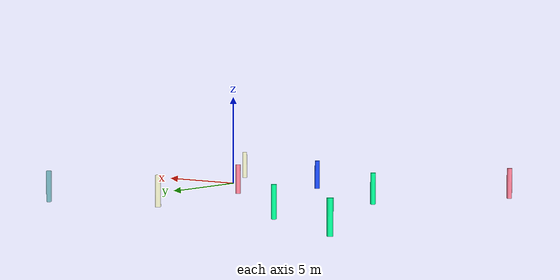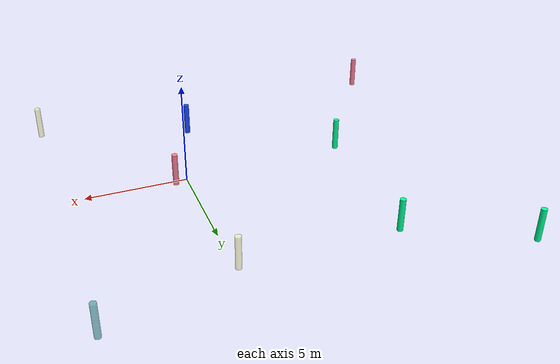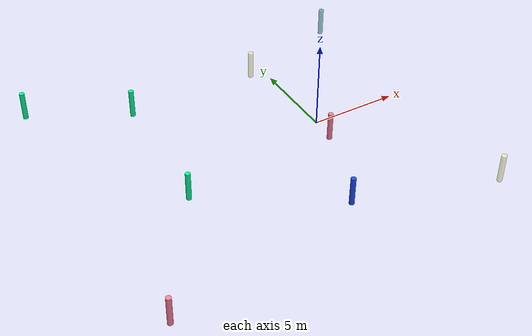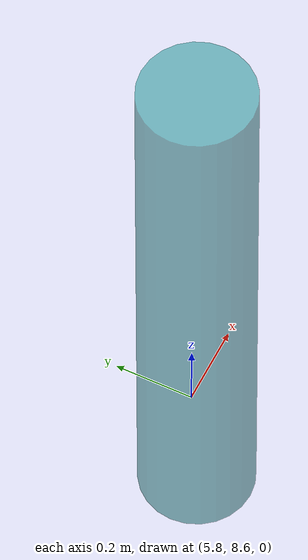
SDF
<?xml version='1.0'?>
<sdf version='1.6'>
  <model name='column'>
    <link name='link'>
      <pose frame=''>0.349547 -0.833341 0.176042 0 -0 0</pose>
      <inertial>
        <mass>0.145554</mass>
        <inertia>
          <ixx>0.0358698</ixx>
          <ixy>0</ixy>
          <ixz>0</ixz>
          <iyy>0.0358698</iyy>
          <iyz>0</iyz>
          <izz>0.00155704</izz>
        </inertia>
        <pose frame=''>0 0 0 0 -0 0</pose>
      </inertial>
      <self_collide>0</self_collide>
      <kinematic>0</kinematic>
      <gravity>1</gravity>
      <visual name='visual'>
        <geometry>
          <cylinder>
            <radius>0.146269</radius>
            <length>1.7009</length>
          </cylinder>
        </geometry>
        <material>
          <script>
            <name>Gazebo/Grey</name>
            <uri>file://media/materials/scripts/gazebo.material</uri>
          </script>
          <shader type='pixel'>
            <normal_map>__default__</normal_map>
          </shader>
          <ambient>1 0.5 0.6 1</ambient>
          <diffuse>0.7 0.7 0.7 1</diffuse>
          <specular>0.01 0.01 0.01 1</specular>
          <emissive>0 0 0 1</emissive>
        </material>
        <pose frame=''>0 0 0 0 -0 0</pose>
        <transparency>0</transparency>
        <cast_shadows>1</cast_shadows>
      </visual>
      <collision name='collision'>
        <laser_retro>0</laser_retro>
        <max_contacts>10</max_contacts>
        <pose frame=''>0 0 0 0 -0 0</pose>
        <geometry>
          <cylinder>
            <radius>0.146269</radius>
            <length>1.7009</length>
          </cylinder>
        </geometry>
        <surface>
          <friction>
            <ode>
              <mu>1</mu>
              <mu2>1</mu2>
              <fdir1>0 0 0</fdir1>
              <slip1>0</slip1>
              <slip2>0</slip2>
            </ode>
            <torsional>
              <coefficient>1</coefficient>
              <patch_radius>0</patch_radius>
              <surface_radius>0</surface_radius>
              <use_patch_radius>1</use_patch_radius>
              <ode>
                <slip>0</slip>
              </ode>
            </torsional>
          </friction>
          <bounce>
            <restitution_coefficient>0</restitution_coefficient>
            <threshold>1e+06</threshold>
          </bounce>
          <contact>
            <collide_without_contact>0</collide_without_contact>
            <collide_without_contact_bitmask>1</collide_without_contact_bitmask>
            <collide_bitmask>1</collide_bitmask>
            <ode>
              <soft_cfm>0</soft_cfm>
              <soft_erp>0.2</soft_erp>
              <kp>1e+13</kp>
              <kd>1</kd>
              <max_vel>0.01</max_vel>
              <min_depth>0</min_depth>
            </ode>
            <bullet>
              <split_impulse>1</split_impulse>
              <split_impulse_penetration_threshold>-0.01</split_impulse_penetration_threshold>
              <soft_cfm>0</soft_cfm>
              <soft_erp>0.2</soft_erp>
              <kp>1e+13</kp>
              <kd>1</kd>
            </bullet>
          </contact>
        </surface>
      </collision>
    </link>
    <link name='link_clone'>
      <pose frame=''>-8.75389 -1.38512 0.176042 0 -0 0</pose>
      <inertial>
        <mass>0.145554</mass>
        <inertia>
          <ixx>0.0358698</ixx>
          <ixy>0</ixy>
          <ixz>0</ixz>
          <iyy>0.0358698</iyy>
          <iyz>0</iyz>
          <izz>0.00155704</izz>
        </inertia>
        <pose frame=''>0 0 0 0 -0 0</pose>
      </inertial>
      <self_collide>0</self_collide>
      <kinematic>0</kinematic>
      <gravity>1</gravity>
      <visual name='visual'>
        <geometry>
          <cylinder>
            <radius>0.146269</radius>
            <length>1.7009</length>
          </cylinder>
        </geometry>
        <material>
          <script>
            <name>Gazebo/Grey</name>
            <uri>file://media/materials/scripts/gazebo.material</uri>
          </script>
          <shader type='pixel'>
            <normal_map>__default__</normal_map>
          </shader>
          <ambient>0 1 0.6 1</ambient>
          <diffuse>0.7 0.7 0.7 1</diffuse>
          <specular>0.01 0.01 0.01 1</specular>
          <emissive>0 0 0 1</emissive>
        </material>
        <pose frame=''>0 0 0 0 -0 0</pose>
        <transparency>0</transparency>
        <cast_shadows>1</cast_shadows>
      </visual>
      <collision name='collision'>
        <laser_retro>0</laser_retro>
        <max_contacts>10</max_contacts>
        <pose frame=''>0 0 0 0 -0 0</pose>
        <geometry>
          <cylinder>
            <radius>0.146269</radius>
            <length>1.7009</length>
          </cylinder>
        </geometry>
        <surface>
          <friction>
            <ode>
              <mu>1</mu>
              <mu2>1</mu2>
              <fdir1>0 0 0</fdir1>
              <slip1>0</slip1>
              <slip2>0</slip2>
            </ode>
            <torsional>
              <coefficient>1</coefficient>
              <patch_radius>0</patch_radius>
              <surface_radius>0</surface_radius>
              <use_patch_radius>1</use_patch_radius>
              <ode>
                <slip>0</slip>
              </ode>
            </torsional>
          </friction>
          <bounce>
            <restitution_coefficient>0</restitution_coefficient>
            <threshold>1e+06</threshold>
          </bounce>
          <contact>
            <collide_without_contact>0</collide_without_contact>
            <collide_without_contact_bitmask>1</collide_without_contact_bitmask>
            <collide_bitmask>1</collide_bitmask>
            <ode>
              <soft_cfm>0</soft_cfm>
              <soft_erp>0.2</soft_erp>
              <kp>1e+13</kp>
              <kd>1</kd>
              <max_vel>0.01</max_vel>
              <min_depth>0</min_depth>
            </ode>
            <bullet>
              <split_impulse>1</split_impulse>
              <split_impulse_penetration_threshold>-0.01</split_impulse_penetration_threshold>
              <soft_cfm>0</soft_cfm>
              <soft_erp>0.2</soft_erp>
              <kp>1e+13</kp>
              <kd>1</kd>
            </bullet>
          </contact>
        </surface>
      </collision>
    </link>
    <link name='link_clone_0'>
      <pose frame=''>-13.3207 -8.44434 0.176042 0 -0 0</pose>
      <inertial>
        <mass>0.145554</mass>
        <inertia>
          <ixx>0.0358698</ixx>
          <ixy>0</ixy>
          <ixz>0</ixz>
          <iyy>0.0358698</iyy>
          <iyz>0</iyz>
          <izz>0.00155704</izz>
        </inertia>
        <pose frame=''>0 0 0 0 -0 0</pose>
      </inertial>
      <self_collide>0</self_collide>
      <kinematic>0</kinematic>
      <visual name='visual'>
        <geometry>
          <cylinder>
            <radius>0.146269</radius>
            <length>1.7009</length>
          </cylinder>
        </geometry>
        <material>
          <script>
            <name>Gazebo/Grey</name>
            <uri>file://media/materials/scripts/gazebo.material</uri>
          </script>
          <shader type='pixel'>
            <normal_map>__default__</normal_map>
          </shader>
          <ambient>1 0.5 0.6 1</ambient>
          <diffuse>0.7 0.7 0.7 1</diffuse>
          <specular>0.01 0.01 0.01 1</specular>
          <emissive>0 0 0 1</emissive>
        </material>
        <pose frame=''>0 0 0 0 -0 0</pose>
        <transparency>0</transparency>
        <cast_shadows>1</cast_shadows>
      </visual>
      <collision name='collision'>
        <laser_retro>0</laser_retro>
        <max_contacts>10</max_contacts>
        <pose frame=''>0 0 0 0 -0 0</pose>
        <geometry>
          <cylinder>
            <radius>0.146269</radius>
            <length>1.7009</length>
          </cylinder>
        </geometry>
        <surface>
          <friction>
            <ode>
              <mu>1</mu>
              <mu2>1</mu2>
              <fdir1>0 0 0</fdir1>
              <slip1>0</slip1>
              <slip2>0</slip2>
            </ode>
            <torsional>
              <coefficient>1</coefficient>
              <patch_radius>0</patch_radius>
              <surface_radius>0</surface_radius>
              <use_patch_radius>1</use_patch_radius>
              <ode>
                <slip>0</slip>
              </ode>
            </torsional>
          </friction>
          <bounce>
            <restitution_coefficient>0</restitution_coefficient>
            <threshold>1e+06</threshold>
          </bounce>
          <contact>
            <collide_without_contact>0</collide_without_contact>
            <collide_without_contact_bitmask>1</collide_without_contact_bitmask>
            <collide_bitmask>1</collide_bitmask>
            <ode>
              <soft_cfm>0</soft_cfm>
              <soft_erp>0.2</soft_erp>
              <kp>1e+13</kp>
              <kd>1</kd>
              <max_vel>0.01</max_vel>
              <min_depth>0</min_depth>
            </ode>
            <bullet>
              <split_impulse>1</split_impulse>
              <split_impulse_penetration_threshold>-0.01</split_impulse_penetration_threshold>
              <soft_cfm>0</soft_cfm>
              <soft_erp>0.2</soft_erp>
              <kp>1e+13</kp>
              <kd>1</kd>
            </bullet>
          </contact>
        </surface>
      </collision>
    </link>
    <link name='link_clone_1'>
      <pose frame=''>5.98284 8.67618 0.176042 0 -0 0</pose>
      <inertial>
        <mass>0.145554</mass>
        <inertia>
          <ixx>0.0358698</ixx>
          <ixy>0</ixy>
          <ixz>0</ixz>
          <iyy>0.0358698</iyy>
          <iyz>0</iyz>
          <izz>0.00155704</izz>
        </inertia>
        <pose frame=''>0 0 0 0 -0 0</pose>
      </inertial>
      <self_collide>0</self_collide>
      <kinematic>0</kinematic>
      <gravity>1</gravity>
      <visual name='visual'>
        <geometry>
          <cylinder>
            <radius>0.146269</radius>
            <length>1.7009</length>
          </cylinder>
        </geometry>
        <material>
          <script>
            <name>Gazebo/Grey</name>
            <uri>file://media/materials/scripts/gazebo.material</uri>
          </script>
          <shader type='pixel'>
            <normal_map>__default__</normal_map>
          </shader>
          <ambient>1 1 1 1</ambient>
          <diffuse>0 0.5 0.5 0.5</diffuse>
          <specular>0 0 1 1</specular>
          <emissive>1 0 0 1</emissive>
        </material>
        <pose frame=''>0 0 0 0 -0 0</pose>
        <transparency>0</transparency>
        <cast_shadows>1</cast_shadows>
      </visual>
      <collision name='collision'>
        <laser_retro>0</laser_retro>
        <max_contacts>10</max_contacts>
        <pose frame=''>0 0 0 0 -0 0</pose>
        <geometry>
          <cylinder>
            <radius>0.146269</radius>
            <length>1.7009</length>
          </cylinder>
        </geometry>
        <surface>
          <friction>
            <ode>
              <mu>1</mu>
              <mu2>1</mu2>
              <fdir1>0 0 0</fdir1>
              <slip1>0</slip1>
              <slip2>0</slip2>
            </ode>
            <torsional>
              <coefficient>1</coefficient>
              <patch_radius>0</patch_radius>
              <surface_radius>0</surface_radius>
              <use_patch_radius>1</use_patch_radius>
              <ode>
                <slip>0</slip>
              </ode>
            </torsional>
          </friction>
          <bounce>
            <restitution_coefficient>0</restitution_coefficient>
            <threshold>1e+06</threshold>
          </bounce>
          <contact>
            <collide_without_contact>0</collide_without_contact>
            <collide_without_contact_bitmask>1</collide_without_contact_bitmask>
            <collide_bitmask>1</collide_bitmask>
            <ode>
              <soft_cfm>0</soft_cfm>
              <soft_erp>0.2</soft_erp>
              <kp>1e+13</kp>
              <kd>1</kd>
              <max_vel>0.01</max_vel>
              <min_depth>0</min_depth>
            </ode>
            <bullet>
              <split_impulse>1</split_impulse>
              <split_impulse_penetration_threshold>-0.01</split_impulse_penetration_threshold>
              <soft_cfm>0</soft_cfm>
              <soft_erp>0.2</soft_erp>
              <kp>1e+13</kp>
              <kd>1</kd>
            </bullet>
          </contact>
        </surface>
      </collision>
    </link>
    <link name='link_clone_clone'>
      <pose frame=''>-1.67833 -5.92814 0.176042 0 -0 0</pose>
      <inertial>
        <mass>0.145554</mass>
        <inertia>
          <ixx>0.0358698</ixx>
          <ixy>0</ixy>
          <ixz>0</ixz>
          <iyy>0.0358698</iyy>
          <iyz>0</iyz>
          <izz>0.00155704</izz>
        </inertia>
        <pose frame=''>0 0 0 0 -0 0</pose>
      </inertial>
      <self_collide>0</self_collide>
      <kinematic>0</kinematic>
      <gravity>1</gravity>
      <visual name='visual'>
        <geometry>
          <cylinder>
            <radius>0.146269</radius>
            <length>1.7009</length>
          </cylinder>
        </geometry>
        <material>
          <script>
            <name>Gazebo/Grey</name>
            <uri>file://media/materials/scripts/gazebo.material</uri>
          </script>
          <shader type='pixel'>
            <normal_map>__default__</normal_map>
          </shader>
          <ambient>0.1 0.3 1 1</ambient>
          <diffuse>0.7 0.7 0.7 1</diffuse>
          <specular>0.01 0.01 0.01 1</specular>
          <emissive>0 0 0 1</emissive>
        </material>
        <pose frame=''>0 0 0 0 -0 0</pose>
        <transparency>0</transparency>
        <cast_shadows>1</cast_shadows>
      </visual>
      <collision name='collision'>
        <laser_retro>0</laser_retro>
        <max_contacts>10</max_contacts>
        <pose frame=''>0 0 0 0 -0 0</pose>
        <geometry>
          <cylinder>
            <radius>0.146269</radius>
            <length>1.7009</length>
          </cylinder>
        </geometry>
        <surface>
          <friction>
            <ode>
              <mu>1</mu>
              <mu2>1</mu2>
              <fdir1>0 0 0</fdir1>
              <slip1>0</slip1>
              <slip2>0</slip2>
            </ode>
            <torsional>
              <coefficient>1</coefficient>
              <patch_radius>0</patch_radius>
              <surface_radius>0</surface_radius>
              <use_patch_radius>1</use_patch_radius>
              <ode>
                <slip>0</slip>
              </ode>
            </torsional>
          </friction>
          <bounce>
            <restitution_coefficient>0</restitution_coefficient>
            <threshold>1e+06</threshold>
          </bounce>
          <contact>
            <collide_without_contact>0</collide_without_contact>
            <collide_without_contact_bitmask>1</collide_without_contact_bitmask>
            <collide_bitmask>1</collide_bitmask>
            <ode>
              <soft_cfm>0</soft_cfm>
              <soft_erp>0.2</soft_erp>
              <kp>1e+13</kp>
              <kd>1</kd>
              <max_vel>0.01</max_vel>
              <min_depth>0</min_depth>
            </ode>
            <bullet>
              <split_impulse>1</split_impulse>
              <split_impulse_penetration_threshold>-0.01</split_impulse_penetration_threshold>
              <soft_cfm>0</soft_cfm>
              <soft_erp>0.2</soft_erp>
              <kp>1e+13</kp>
              <kd>1</kd>
            </bullet>
          </contact>
        </surface>
      </collision>
    </link>
    <link name='link_clone_clone_0'>
      <pose frame=''>-8.25338 6.63945 0.176042 0 -0 0</pose>
      <inertial>
        <mass>0.145554</mass>
        <inertia>
          <ixx>0.0358698</ixx>
          <ixy>0</ixy>
          <ixz>0</ixz>
          <iyy>0.0358698</iyy>
          <iyz>0</iyz>
          <izz>0.00155704</izz>
        </inertia>
        <pose frame=''>0 0 0 0 -0 0</pose>
      </inertial>
      <self_collide>0</self_collide>
      <kinematic>0</kinematic>
      <visual name='visual'>
        <geometry>
          <cylinder>
            <radius>0.146269</radius>
            <length>1.7009</length>
          </cylinder>
        </geometry>
        <material>
          <script>
            <name>Gazebo/Grey</name>
            <uri>file://media/materials/scripts/gazebo.material</uri>
          </script>
          <shader type='pixel'>
            <normal_map>__default__</normal_map>
          </shader>
          <ambient>0 1 0.6 1</ambient>
          <diffuse>0.7 0.7 0.7 1</diffuse>
          <specular>0.01 0.01 0.01 1</specular>
          <emissive>0 0 0 1</emissive>
        </material>
        <pose frame=''>0 0 0 0 -0 0</pose>
        <transparency>0</transparency>
        <cast_shadows>1</cast_shadows>
      </visual>
      <collision name='collision'>
        <laser_retro>0</laser_retro>
        <max_contacts>10</max_contacts>
        <pose frame=''>0 0 0 0 -0 0</pose>
        <geometry>
          <cylinder>
            <radius>0.146269</radius>
            <length>1.7009</length>
          </cylinder>
        </geometry>
        <surface>
          <friction>
            <ode>
              <mu>1</mu>
              <mu2>1</mu2>
              <fdir1>0 0 0</fdir1>
              <slip1>0</slip1>
              <slip2>0</slip2>
            </ode>
            <torsional>
              <coefficient>1</coefficient>
              <patch_radius>0</patch_radius>
              <surface_radius>0</surface_radius>
              <use_patch_radius>1</use_patch_radius>
              <ode>
                <slip>0</slip>
              </ode>
            </torsional>
          </friction>
          <bounce>
            <restitution_coefficient>0</restitution_coefficient>
            <threshold>1e+06</threshold>
          </bounce>
          <contact>
            <collide_without_contact>0</collide_without_contact>
            <collide_without_contact_bitmask>1</collide_without_contact_bitmask>
            <collide_bitmask>1</collide_bitmask>
            <ode>
              <soft_cfm>0</soft_cfm>
              <soft_erp>0.2</soft_erp>
              <kp>1e+13</kp>
              <kd>1</kd>
              <max_vel>0.01</max_vel>
              <min_depth>0</min_depth>
            </ode>
            <bullet>
              <split_impulse>1</split_impulse>
              <split_impulse_penetration_threshold>-0.01</split_impulse_penetration_threshold>
              <soft_cfm>0</soft_cfm>
              <soft_erp>0.2</soft_erp>
              <kp>1e+13</kp>
              <kd>1</kd>
            </bullet>
          </contact>
        </surface>
      </collision>
    </link>
    <link name='link_clone_clone_0_clone'>
      <pose frame=''>-13.6819 9.51066 0.176042 0 -0 0</pose>
      <inertial>
        <mass>0.145554</mass>
        <inertia>
          <ixx>0.0358698</ixx>
          <ixy>0</ixy>
          <ixz>0</ixz>
          <iyy>0.0358698</iyy>
          <iyz>0</iyz>
          <izz>0.00155704</izz>
        </inertia>
        <pose frame=''>0 0 0 0 -0 0</pose>
      </inertial>
      <self_collide>0</self_collide>
      <kinematic>0</kinematic>
      <visual name='visual'>
        <geometry>
          <cylinder>
            <radius>0.146269</radius>
            <length>1.7009</length>
          </cylinder>
        </geometry>
        <material>
          <script>
            <name>Gazebo/Grey</name>
            <uri>file://media/materials/scripts/gazebo.material</uri>
          </script>
          <shader type='pixel'>
            <normal_map>__default__</normal_map>
          </shader>
          <ambient>0 1 0.6 1</ambient>
          <diffuse>0.7 0.7 0.7 1</diffuse>
          <specular>0.01 0.01 0.01 1</specular>
          <emissive>0 0 0 1</emissive>
        </material>
        <pose frame=''>0 0 0 0 -0 0</pose>
        <transparency>0</transparency>
        <cast_shadows>1</cast_shadows>
      </visual>
      <collision name='collision'>
        <laser_retro>0</laser_retro>
        <max_contacts>10</max_contacts>
        <pose frame=''>0 0 0 0 -0 0</pose>
        <geometry>
          <cylinder>
            <radius>0.146269</radius>
            <length>1.7009</length>
          </cylinder>
        </geometry>
        <surface>
          <friction>
            <ode>
              <mu>1</mu>
              <mu2>1</mu2>
              <fdir1>0 0 0</fdir1>
              <slip1>0</slip1>
              <slip2>0</slip2>
            </ode>
            <torsional>
              <coefficient>1</coefficient>
              <patch_radius>0</patch_radius>
              <surface_radius>0</surface_radius>
              <use_patch_radius>1</use_patch_radius>
              <ode>
                <slip>0</slip>
              </ode>
            </torsional>
          </friction>
          <bounce>
            <restitution_coefficient>0</restitution_coefficient>
            <threshold>1e+06</threshold>
          </bounce>
          <contact>
            <collide_without_contact>0</collide_without_contact>
            <collide_without_contact_bitmask>1</collide_without_contact_bitmask>
            <collide_bitmask>1</collide_bitmask>
            <ode>
              <soft_cfm>0</soft_cfm>
              <soft_erp>0.2</soft_erp>
              <kp>1e+13</kp>
              <kd>1</kd>
              <max_vel>0.01</max_vel>
              <min_depth>0</min_depth>
            </ode>
            <bullet>
              <split_impulse>1</split_impulse>
              <split_impulse_penetration_threshold>-0.01</split_impulse_penetration_threshold>
              <soft_cfm>0</soft_cfm>
              <soft_erp>0.2</soft_erp>
              <kp>1e+13</kp>
              <kd>1</kd>
            </bullet>
          </contact>
        </surface>
      </collision>
    </link>
    <link name='link_clone_clone_1'>
      <pose frame=''>-0.398356 6.64891 0.176042 0 -0 0</pose>
      <inertial>
        <mass>0.145554</mass>
        <inertia>
          <ixx>0.0358698</ixx>
          <ixy>0</ixy>
          <ixz>0</ixz>
          <iyy>0.0358698</iyy>
          <iyz>0</iyz>
          <izz>0.00155704</izz>
        </inertia>
        <pose frame=''>0 0 0 0 -0 0</pose>
      </inertial>
      <self_collide>0</self_collide>
      <kinematic>0</kinematic>
      <gravity>1</gravity>
      <visual name='visual'>
        <geometry>
          <cylinder>
            <radius>0.146269</radius>
            <length>1.7009</length>
          </cylinder>
        </geometry>
        <material>
          <script>
            <name>Gazebo/Grey</name>
            <uri>file://media/materials/scripts/gazebo.material</uri>
          </script>
          <shader type='pixel'>
            <normal_map>__default__</normal_map>
          </shader>
          <ambient>1 1 0.6 0.5</ambient>
          <diffuse>1 1 1 1</diffuse>
          <specular>1 1 1 1</specular>
          <emissive>1 1 1 1</emissive>
        </material>
        <pose frame=''>0 0 0 0 -0 0</pose>
        <transparency>0</transparency>
        <cast_shadows>1</cast_shadows>
      </visual>
      <collision name='collision'>
        <laser_retro>0</laser_retro>
        <max_contacts>10</max_contacts>
        <pose frame=''>0 0 0 0 -0 0</pose>
        <geometry>
          <cylinder>
            <radius>0.146269</radius>
            <length>1.7009</length>
          </cylinder>
        </geometry>
        <surface>
          <friction>
            <ode>
              <mu>1</mu>
              <mu2>1</mu2>
              <fdir1>0 0 0</fdir1>
              <slip1>0</slip1>
              <slip2>0</slip2>
            </ode>
            <torsional>
              <coefficient>1</coefficient>
              <patch_radius>0</patch_radius>
              <surface_radius>0</surface_radius>
              <use_patch_radius>1</use_patch_radius>
              <ode>
                <slip>0</slip>
              </ode>
            </torsional>
          </friction>
          <bounce>
            <restitution_coefficient>0</restitution_coefficient>
            <threshold>1e+06</threshold>
          </bounce>
          <contact>
            <collide_without_contact>0</collide_without_contact>
            <collide_without_contact_bitmask>1</collide_without_contact_bitmask>
            <collide_bitmask>1</collide_bitmask>
            <ode>
              <soft_cfm>0</soft_cfm>
              <soft_erp>0.2</soft_erp>
              <kp>1e+13</kp>
              <kd>1</kd>
              <max_vel>0.01</max_vel>
              <min_depth>0</min_depth>
            </ode>
            <bullet>
              <split_impulse>1</split_impulse>
              <split_impulse_penetration_threshold>-0.01</split_impulse_penetration_threshold>
              <soft_cfm>0</soft_cfm>
              <soft_erp>0.2</soft_erp>
              <kp>1e+13</kp>
              <kd>1</kd>
            </bullet>
          </contact>
        </surface>
      </collision>
    </link>
    <link name='link_clone_clone_1_clone'>
      <pose frame=''>6.13997 -8.37015 0.176042 0 -0 0</pose>
      <inertial>
        <mass>0.145554</mass>
        <inertia>
          <ixx>0.0358698</ixx>
          <ixy>0</ixy>
          <ixz>0</ixz>
          <iyy>0.0358698</iyy>
          <iyz>0</iyz>
          <izz>0.00155704</izz>
        </inertia>
        <pose frame=''>0 0 0 0 -0 0</pose>
      </inertial>
      <self_collide>0</self_collide>
      <kinematic>0</kinematic>
      <visual name='visual'>
        <geometry>
          <cylinder>
            <radius>0.146269</radius>
            <length>1.7009</length>
          </cylinder>
        </geometry>
        <material>
          <script>
            <name>Gazebo/Grey</name>
            <uri>file://media/materials/scripts/gazebo.material</uri>
          </script>
          <shader type='pixel'>
            <normal_map>__default__</normal_map>
          </shader>
          <ambient>1 1 0.6 0.5</ambient>
          <diffuse>1 1 1 1</diffuse>
          <specular>1 1 1 1</specular>
          <emissive>1 1 1 1</emissive>
        </material>
        <pose frame=''>0 0 0 0 -0 0</pose>
        <transparency>0</transparency>
        <cast_shadows>1</cast_shadows>
      </visual>
      <collision name='collision'>
        <laser_retro>0</laser_retro>
        <max_contacts>10</max_contacts>
        <pose frame=''>0 0 0 0 -0 0</pose>
        <geometry>
          <cylinder>
            <radius>0.146269</radius>
            <length>1.7009</length>
          </cylinder>
        </geometry>
        <surface>
          <friction>
            <ode>
              <mu>1</mu>
              <mu2>1</mu2>
              <fdir1>0 0 0</fdir1>
              <slip1>0</slip1>
              <slip2>0</slip2>
            </ode>
            <torsional>
              <coefficient>1</coefficient>
              <patch_radius>0</patch_radius>
              <surface_radius>0</surface_radius>
              <use_patch_radius>1</use_patch_radius>
              <ode>
                <slip>0</slip>
              </ode>
            </torsional>
          </friction>
          <bounce>
            <restitution_coefficient>0</restitution_coefficient>
            <threshold>1e+06</threshold>
          </bounce>
          <contact>
            <collide_without_contact>0</collide_without_contact>
            <collide_without_contact_bitmask>1</collide_without_contact_bitmask>
            <collide_bitmask>1</collide_bitmask>
            <ode>
              <soft_cfm>0</soft_cfm>
              <soft_erp>0.2</soft_erp>
              <kp>1e+13</kp>
              <kd>1</kd>
              <max_vel>0.01</max_vel>
              <min_depth>0</min_depth>
            </ode>
            <bullet>
              <split_impulse>1</split_impulse>
              <split_impulse_penetration_threshold>-0.01</split_impulse_penetration_threshold>
              <soft_cfm>0</soft_cfm>
              <soft_erp>0.2</soft_erp>
              <kp>1e+13</kp>
              <kd>1</kd>
            </bullet>
          </contact>
        </surface>
      </collision>
    </link>
    <static>0</static>
    <allow_auto_disable>1</allow_auto_disable>
  </model>
</sdf>
